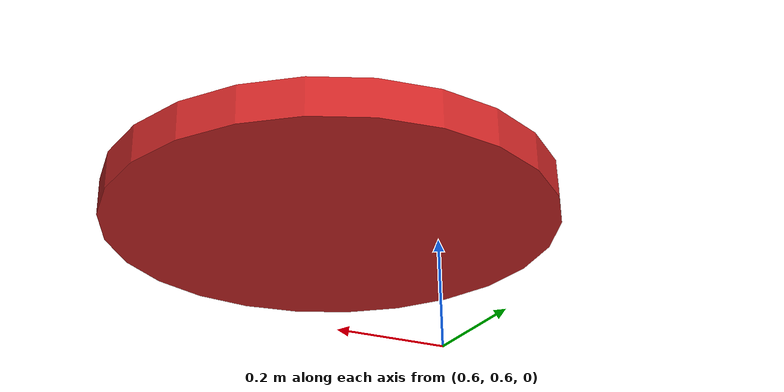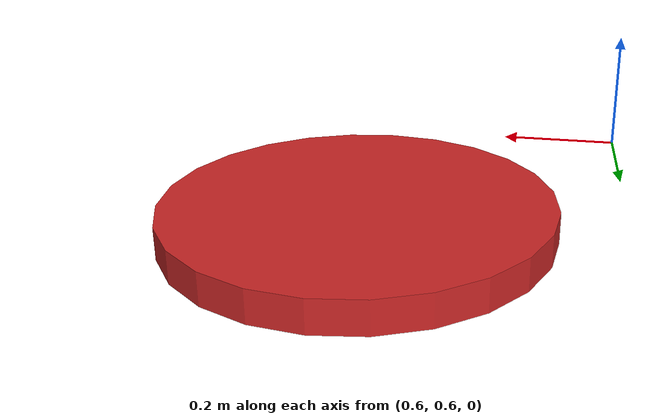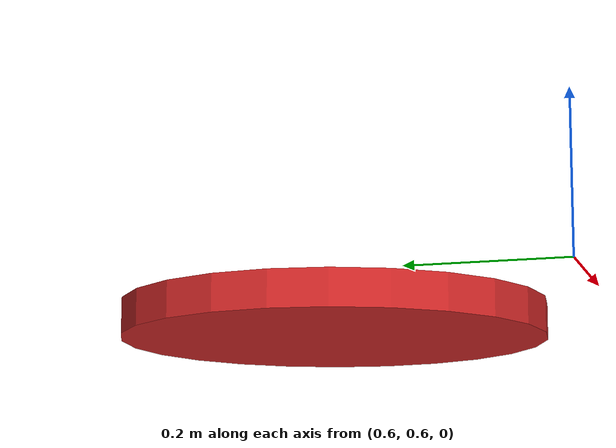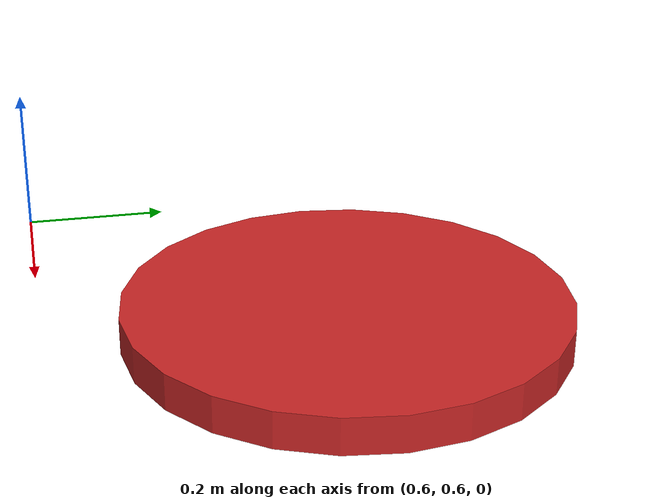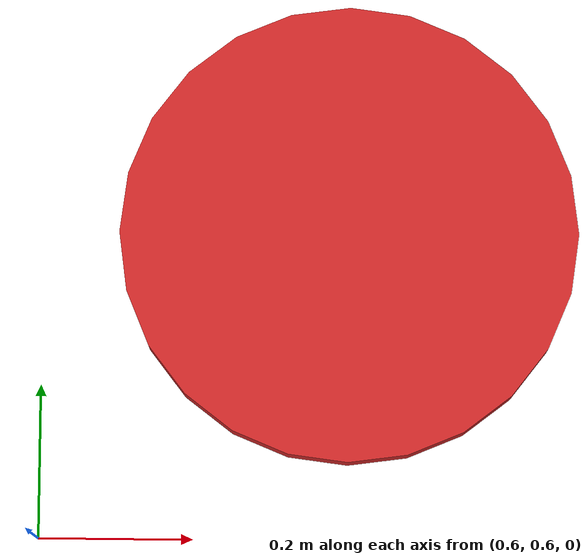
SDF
<?xml version='1.0'?>
<sdf version='1.7'>
  <model name='target'>
      <pose>1 1 0 0 0 0</pose>
      <static>false</static>
      <kinematic>1</kinematic>

      <link name='link'>
        <gravity>0</gravity>
        <visual name='visual'>
          <geometry>
            <cylinder>
              <radius>0.3</radius>
              <length>0.05</length>
            </cylinder>
          </geometry>
          <material>
            <script>
              <name>Gazebo/Red</name>
              <uri>file://media/materials/scripts/gazebo.material</uri>
            </script>
            <shader type='pixel'>
              <normal_map>__default__</normal_map>
            </shader>
            <ambient>1 0 0 1</ambient>
            <diffuse>1 0 0 1</diffuse>
            <specular>1 0 0 1</specular>
            <emissive>1 0 0 1</emissive>
          </material>
        </visual>
      </link>
    </model>
</sdf>
